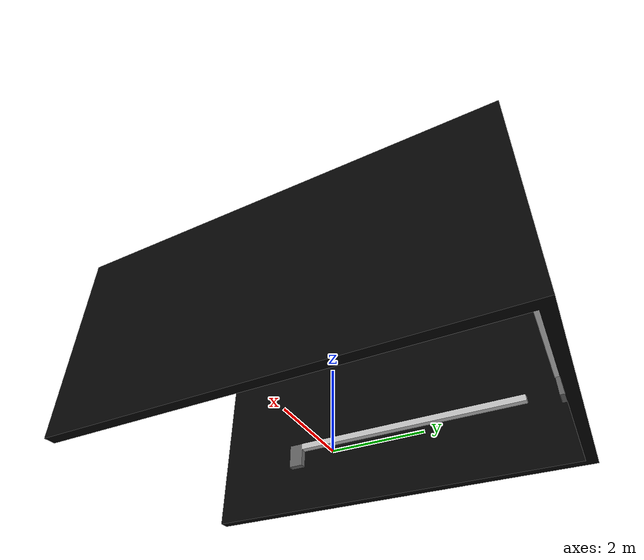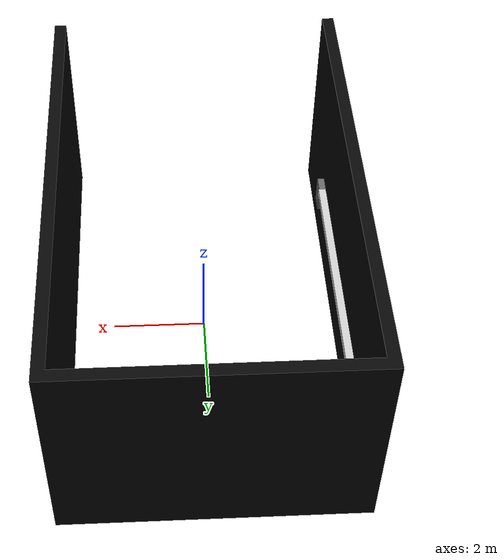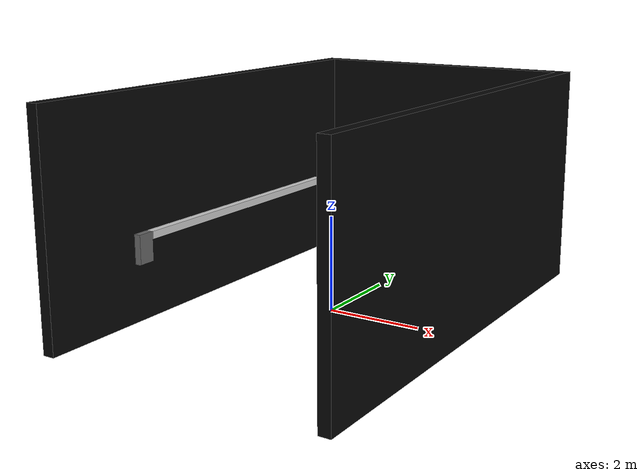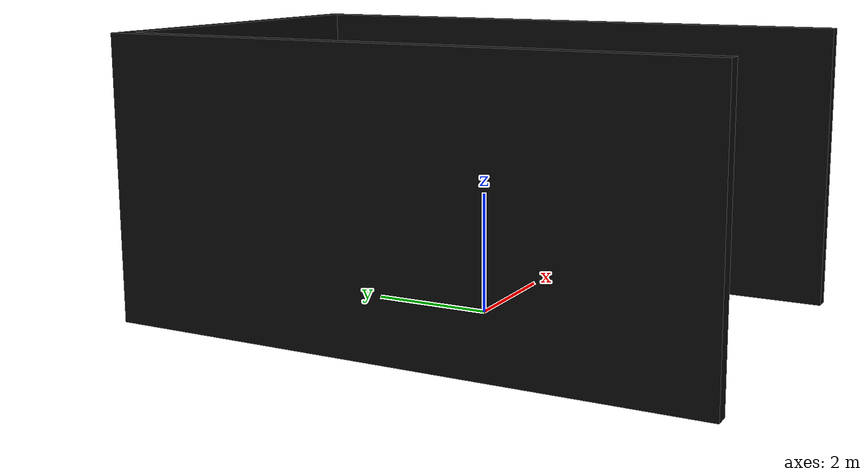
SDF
<?xml version="1.0" ?>
<sdf version="1.5">
  <model name="blackroom-walls">
    <static>true</static>
    <link name="link">
      <collision name="collision">
        <geometry>
          <mesh>
            <uri>model://blackroom-walls/mesh/blackroom-walls.dae</uri>
          </mesh>
        </geometry>
        <surface>
          <friction>
            <ode>
              <mu>100</mu>
              <mu2>100</mu2>
            </ode>
          </friction>
        </surface>
      </collision>
      <visual name="visual">
        <geometry>
          <mesh>
            <uri>model://blackroom-walls/mesh/blackroom-walls.dae</uri>
          </mesh>
        </geometry>
      </visual>
    </link>
  </model>
</sdf>
